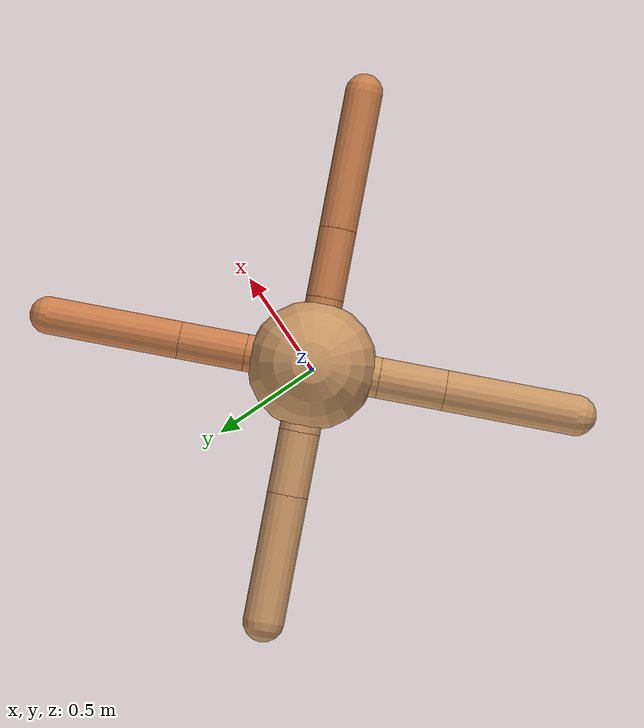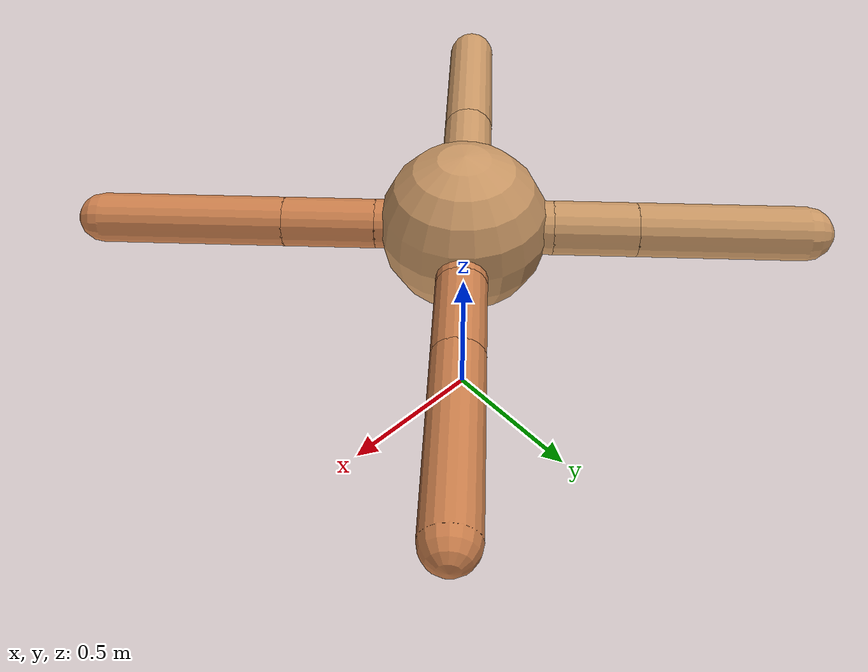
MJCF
<?xml version="1.0" ?>
<mujoco model="ant">

	<compiler angle="degree" coordinate="local" inertiafromgeom="true"/>

	<option integrator="RK4" timestep="0.01"/>

	<custom>

		<numeric data="0.0 0.0 0.55 1.0 0.0 0.0 0.0 0.0 1.0 0.0 -1.0 0.0 -1.0 0.0 1.0" name="init_qpos"/>

	</custom>

	<default>

		<joint armature="1" damping="1" limited="true"/>

		<geom conaffinity="0" condim="3" density="5.0" friction="1.5 0.1 0.1" margin="0.01" rgba="0.8 0.6 0.4 1"/>

	</default>

	<worldbody>

		<body name="torso" pos="0 0 0.75">

			<geom name="torso_geom" pos="0 0 0" size="0.27085289503493504" type="sphere"/>

			<!--joint armature="0" damping="0" limited="false" margin="0.01" name="root" pos="0 0 0" type="free"/-->

			<body name="front_left_leg" pos="0 0 0">

				<geom fromto="0 0 0 0.2 0.2 0" name="aux_1_geom" size="0.07900999487435413" type="capsule" rgba=".8 .5 .3 1"/>

				<body name="aux_1" pos="0.2 0.2 0">

					<joint axis="0 0 1" name="hip_1" pos="0.0 0.0 0.0" range="-40 40" type="hinge"/>

					<geom fromto="0 0 0 0.19731262104046937 0.19731262104046937 0" name="left_leg_geom" size="0.07900999487435413" type="capsule" rgba=".8 .5 .3 1"/>

					<body pos="0.19731262104046937 0.19731262104046937 0" name="front_left_foot">

						<joint axis="-1 1 0" name="ankle_1" pos="0.0 0.0 0.0" range="30 100" type="hinge"/>

						<geom fromto="0 0 0 0.39462524208093874 0.39462524208093874 0" name="left_ankle_geom" size="0.07900999487435413" type="capsule" rgba=".8 .5 .3 1"/>

					</body>

				</body>

			</body>

			<body name="front_right_leg" pos="0 0 0">

				<geom fromto="0 0 0 -0.2 0.2 0" name="aux_2_geom" size="0.08697780635161616" type="capsule"/>

				<body name="aux_2" pos="-0.2 0.2 0">

					<joint axis="0 0 1" name="hip_2" pos="0.0 0.0 0.0" range="-40 40" type="hinge"/>

					<geom fromto="0 0 0 -0.18860650072553237 0.18860650072553237 0" name="right_leg_geom" size="0.08697780635161616" type="capsule"/>

					<body pos="-0.18860650072553237 0.18860650072553237 0" name="front_right_foot">

						<joint axis="1 1 0" name="ankle_2" pos="0.0 0.0 0.0" range="-100 -30" type="hinge"/>

						<geom fromto="0 0 0 -0.37721300145106473 0.37721300145106473 0" name="right_ankle_geom" size="0.08697780635161616" type="capsule"/>

					</body>

				</body>

			</body>

			<body name="left_back_leg" pos="0 0 0">

				<geom fromto="0 0 0 -0.2 -0.2 0" name="aux_3_geom" size="0.08622220619084713" type="capsule"/>

				<body name="aux_3" pos="-0.2 -0.2 0">

					<joint axis="0 0 1" name="hip_3" pos="0.0 0.0 0.0" range="-40 40" type="hinge"/>

					<geom fromto="0 0 0 -0.1970259196228936 -0.1970259196228936 0" name="back_leg_geom" size="0.08622220619084713" type="capsule"/>

					<body pos="-0.1970259196228936 -0.1970259196228936 0" name="left_back_foot">

						<joint axis="-1 1 0" name="ankle_3" pos="0.0 0.0 0.0" range="-100 -30" type="hinge"/>

						<geom fromto="0 0 0 -0.3940518392457872 -0.3940518392457872 0" name="third_ankle_geom" size="0.08622220619084713" type="capsule"/>

					</body>

				</body>

			</body>

			<body name="right_back_leg" pos="0 0 0">

				<geom fromto="0 0 0 0.2 -0.2 0" name="aux_4_geom" size="0.07943084348477211" type="capsule" rgba=".8 .5 .3 1"/>

				<body name="aux_4" pos="0.2 -0.2 0">

					<joint axis="0 0 1" name="hip_4" pos="0.0 0.0 0.0" range="-40 40" type="hinge"/>

					<geom fromto="0 0 0 0.20760627237923088 -0.20760627237923088 0" name="rightback_leg_geom" size="0.07943084348477211" type="capsule" rgba=".8 .5 .3 1"/>

					<body pos="0.20760627237923088 -0.20760627237923088 0" name="right_back_foot">

						<joint axis="1 1 0" name="ankle_4" pos="0.0 0.0 0.0" range="30 100" type="hinge"/>

						<geom fromto="0 0 0 0.41521254475846175 -0.41521254475846175 0" name="fourth_ankle_geom" size="0.07943084348477211" type="capsule" rgba=".8 .5 .3 1"/>

					</body>

				</body>

			</body>

		</body>

	</worldbody>

	<actuator>

		<motor ctrllimited="true" ctrlrange="-1.0 1.0" joint="hip_4" gear="150"/>

		<motor ctrllimited="true" ctrlrange="-1.0 1.0" joint="ankle_4" gear="150"/>

		<motor ctrllimited="true" ctrlrange="-1.0 1.0" joint="hip_1" gear="150"/>

		<motor ctrllimited="true" ctrlrange="-1.0 1.0" joint="ankle_1" gear="150"/>

		<motor ctrllimited="true" ctrlrange="-1.0 1.0" joint="hip_2" gear="150"/>

		<motor ctrllimited="true" ctrlrange="-1.0 1.0" joint="ankle_2" gear="150"/>

		<motor ctrllimited="true" ctrlrange="-1.0 1.0" joint="hip_3" gear="150"/>

		<motor ctrllimited="true" ctrlrange="-1.0 1.0" joint="ankle_3" gear="150"/>

	</actuator>

</mujoco>
